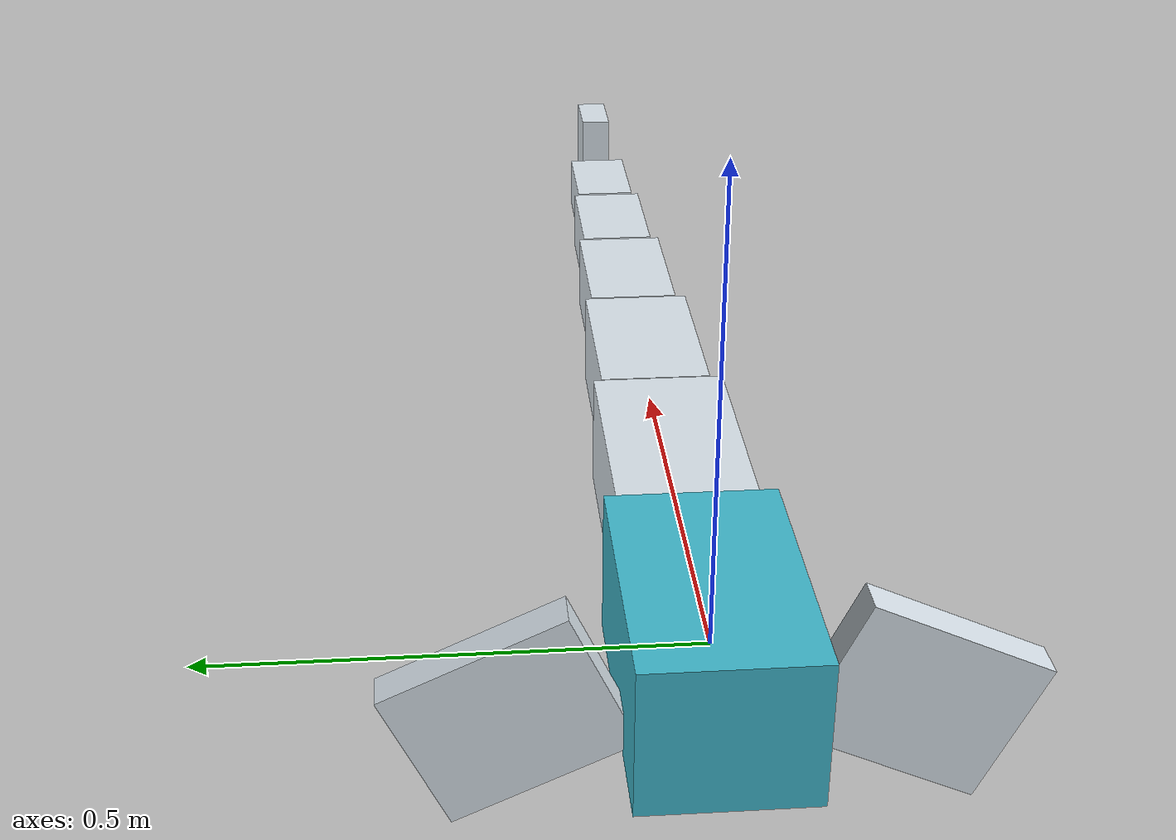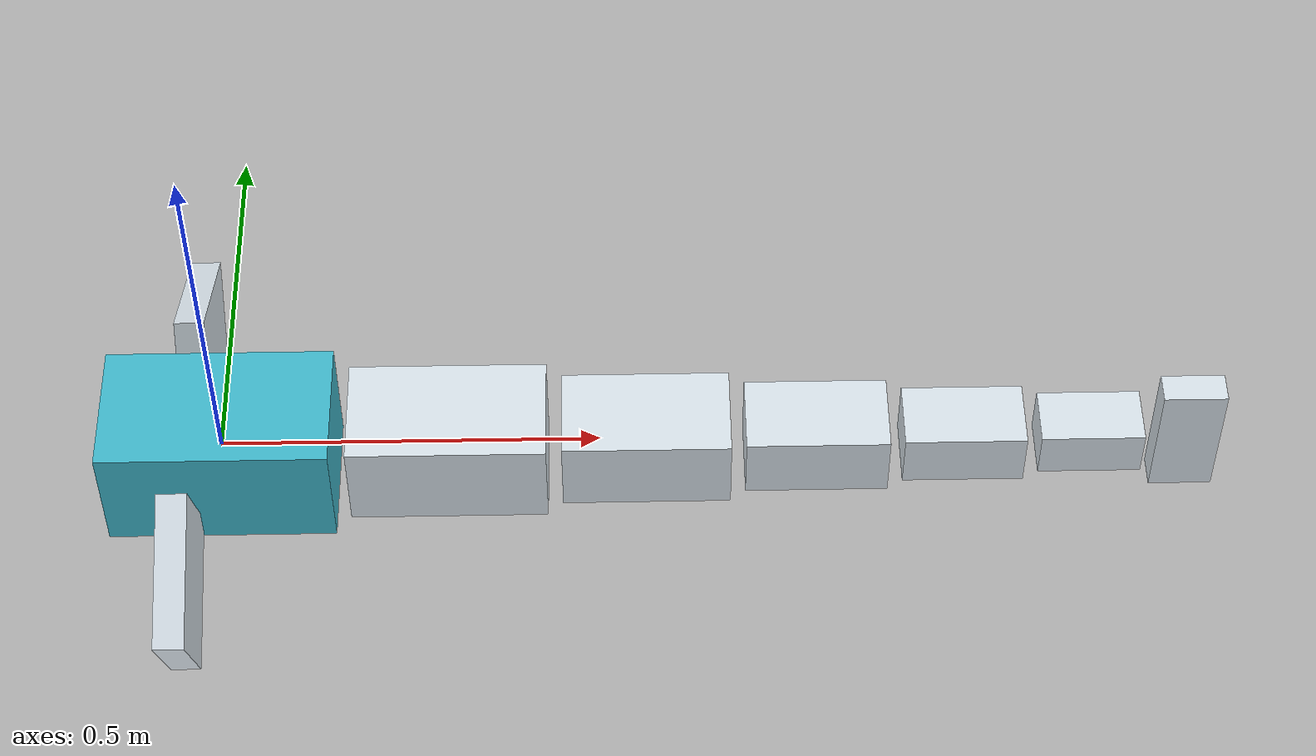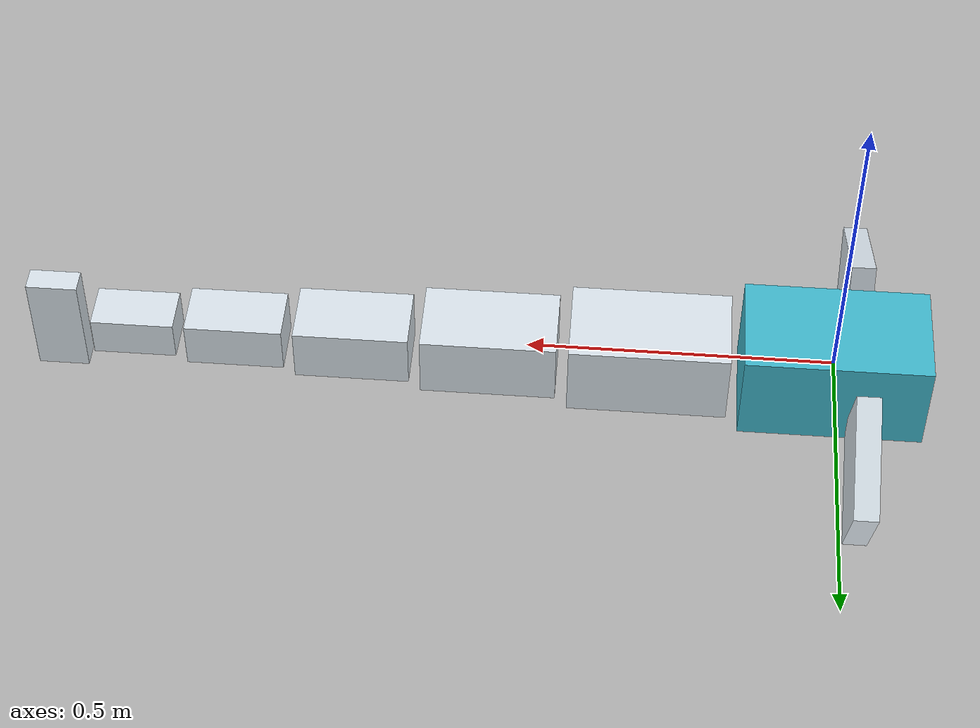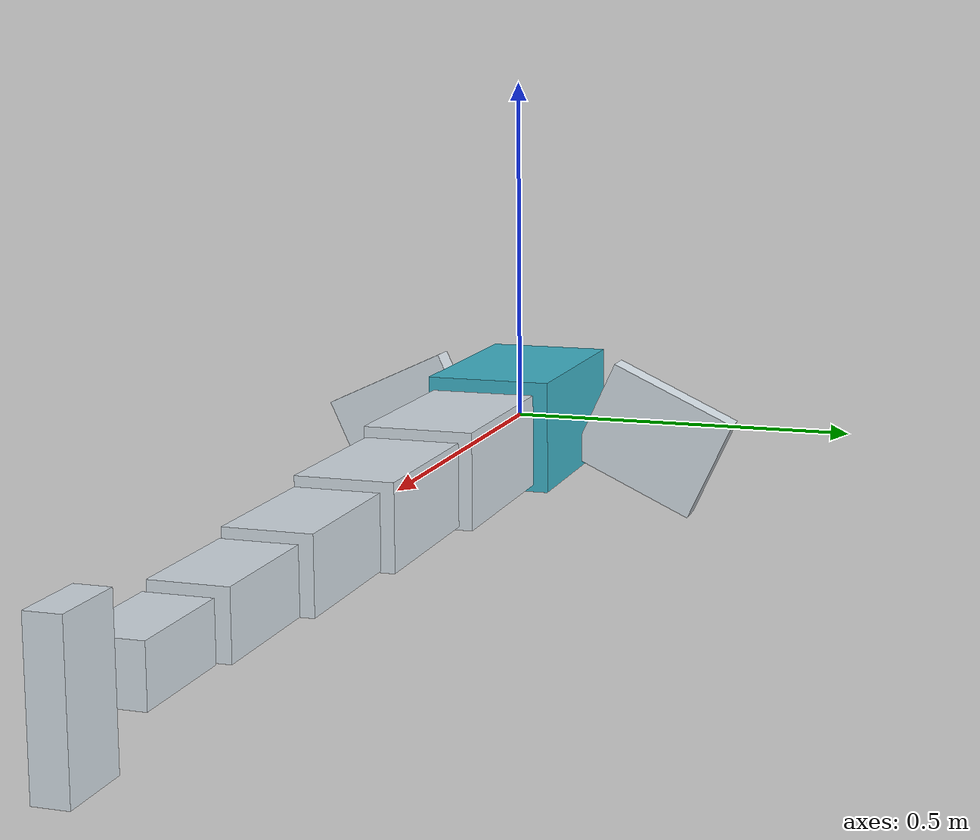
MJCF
<mujoco model="criatura">
  <compiler angle="degree" autolimits="true"/>
  <option timestep="0.002083" gravity="0 0 0" integrator="implicitfast"/>
  <default>
    <geom type="box" density="300.0" rgba="0.85 0.89 0.92 1"/>
    <joint type="hinge"/>
    <motor ctrlrange="-1 1"/>
  </default>
  <worldbody>
    <body name="p0_n0" pos="0.00000 0.00000 0.00000" quat="1.000000 0.000000 0.000000 0.000000">
      <freejoint name="raiz"/>
      <geom name="g_p0_n0" size="0.15000 0.09000 0.08000" rgba="0.25 0.72 0.8 1"/>
      <body name="p1_n1" pos="0.30000 0.00000 0.00000" quat="1.000000 0.000000 0.000000 0.000000">
        <joint name="p1_n1_j0" axis="0.0000 0.0000 1.0000" pos="-0.15000 0 0" range="-60.00 60.00" damping="0.9750"/>
        <geom name="g_p1_n1" size="0.13000 0.07500 0.06500"/>
        <body name="p2_n1" pos="0.26050 0.00000 0.00000" quat="1.000000 0.000000 0.000000 0.000000">
          <joint name="p2_n1_j0" axis="0.0000 0.0000 1.0000" pos="-0.13050 0 0" range="-60.00 60.00" damping="0.7044"/>
          <geom name="g_p2_n1" size="0.11050 0.06375 0.05525"/>
          <body name="p3_n1" pos="0.22442 0.00000 0.00000" quat="1.000000 0.000000 0.000000 0.000000">
            <joint name="p3_n1_j0" axis="0.0000 0.0000 1.0000" pos="-0.11392 0 0" range="-60.00 60.00" damping="0.5090"/>
            <geom name="g_p3_n1" size="0.09392 0.05419 0.04696"/>
            <body name="p4_n1" pos="0.19376 0.00000 0.00000" quat="1.000000 0.000000 0.000000 0.000000">
              <joint name="p4_n1_j0" axis="0.0000 0.0000 1.0000" pos="-0.09984 0 0" range="-60.00 60.00" damping="0.3677"/>
              <geom name="g_p4_n1" size="0.07984 0.04606 0.03992"/>
              <body name="p5_n1" pos="0.16770 0.00000 0.00000" quat="1.000000 0.000000 0.000000 0.000000">
                <joint name="p5_n1_j0" axis="0.0000 0.0000 1.0000" pos="-0.08786 0 0" range="-60.00 60.00" damping="0.2657"/>
                <geom name="g_p5_n1" size="0.06786 0.03915 0.03393"/>
                <body name="p6_n2" pos="0.12962 0.00000 0.00000" quat="1.000000 0.000000 0.000000 0.000000">
                  <joint name="p6_n2_j0" axis="0.0000 0.0000 1.0000" pos="-0.06176 0 0" range="-35.00 35.00" damping="0.2657"/>
                  <geom name="g_p6_n2" size="0.04176 0.02000 0.08874"/>
                </body>
              </body>
            </body>
          </body>
        </body>
      </body>
      <body name="p7_n3" pos="-0.04500 0.19876 -0.03471" quat="0.596368 0.379928 0.596368 0.379928">
        <joint name="p7_n3_j0" axis="0.0000 1.0000 0.0000" pos="-0.12000 0 0" range="-40.00 40.00" damping="0.3200"/>
        <joint name="p7_n3_j1" axis="0.0000 0.0000 1.0000" pos="-0.12000 0 0" range="-40.00 40.00" damping="0.3200"/>
        <geom name="g_p7_n3" size="0.10000 0.08000 0.02000"/>
      </body>
      <body name="p8_n3" pos="-0.04500 -0.19876 -0.03471" quat="0.596368 -0.379928 0.596368 -0.379928">
        <joint name="p8_n3_j0" axis="0.0000 -1.0000 0.0000" pos="-0.12000 0 0" range="-40.00 40.00" damping="0.3200"/>
        <joint name="p8_n3_j1" axis="0.0000 0.0000 1.0000" pos="-0.12000 0 0" range="-40.00 40.00" damping="0.3200"/>
        <geom name="g_p8_n3" size="0.10000 0.08000 0.02000"/>
      </body>
    </body>
  </worldbody>
  <actuator>
    <motor name="m_p1_n1_j0" joint="p1_n1_j0" gear="19.5000"/>
    <motor name="m_p2_n1_j0" joint="p2_n1_j0" gear="14.0888"/>
    <motor name="m_p3_n1_j0" joint="p3_n1_j0" gear="10.1791"/>
    <motor name="m_p4_n1_j0" joint="p4_n1_j0" gear="7.3544"/>
    <motor name="m_p5_n1_j0" joint="p5_n1_j0" gear="5.3136"/>
    <motor name="m_p6_n2_j0" joint="p6_n2_j0" gear="5.3136"/>
    <motor name="m_p7_n3_j0" joint="p7_n3_j0" gear="6.4000"/>
    <motor name="m_p7_n3_j1" joint="p7_n3_j1" gear="6.4000"/>
    <motor name="m_p8_n3_j0" joint="p8_n3_j0" gear="-6.4000"/>
    <motor name="m_p8_n3_j1" joint="p8_n3_j1" gear="-6.4000"/>
  </actuator>
</mujoco>
